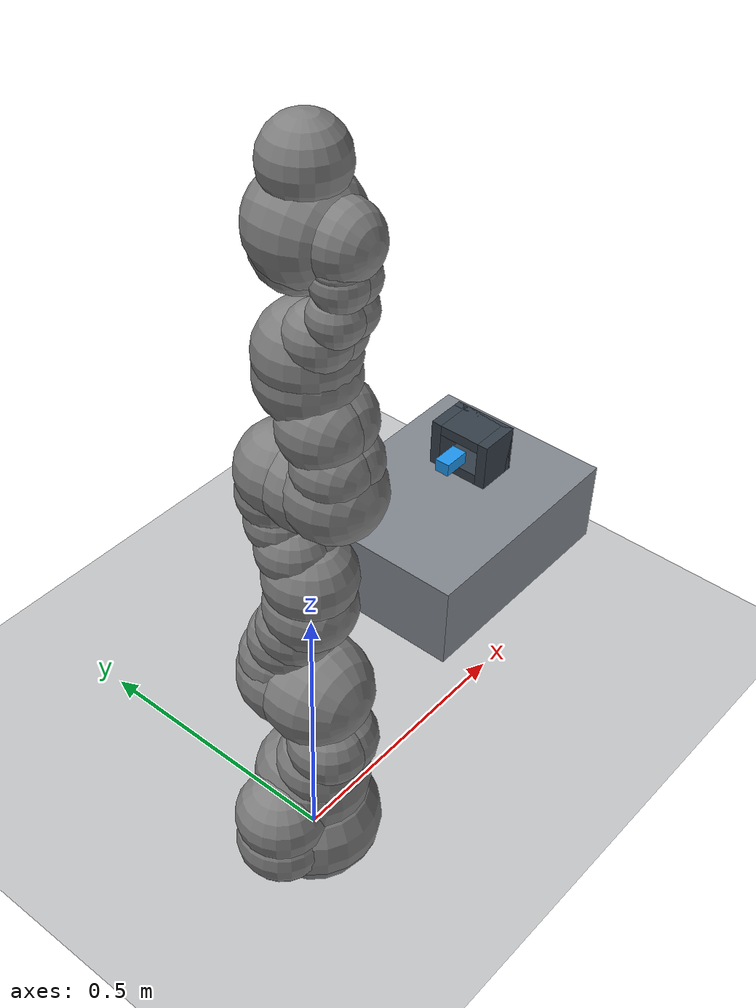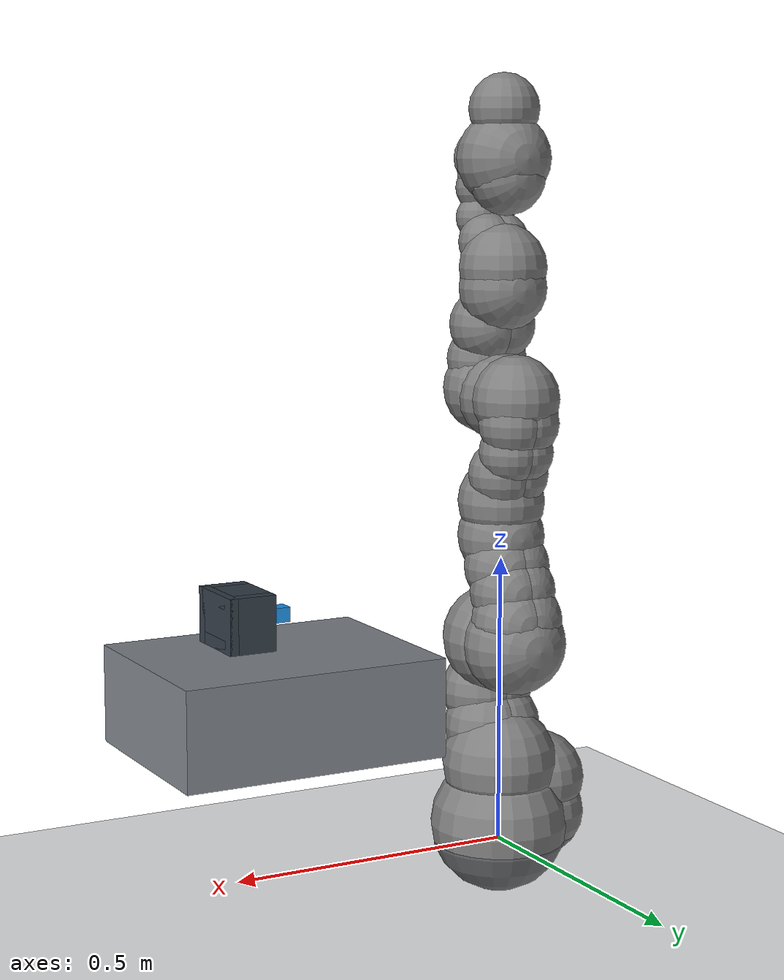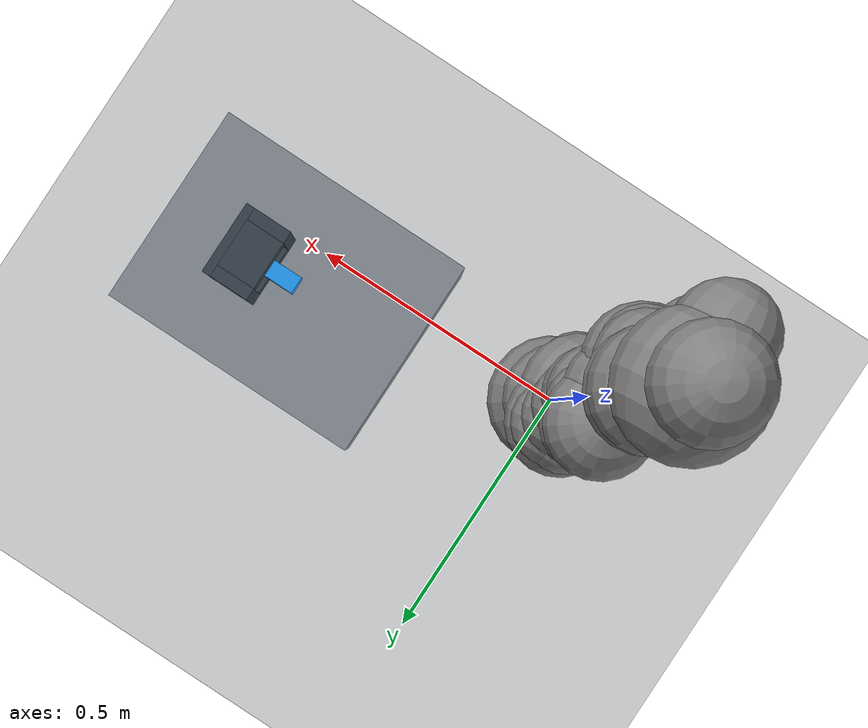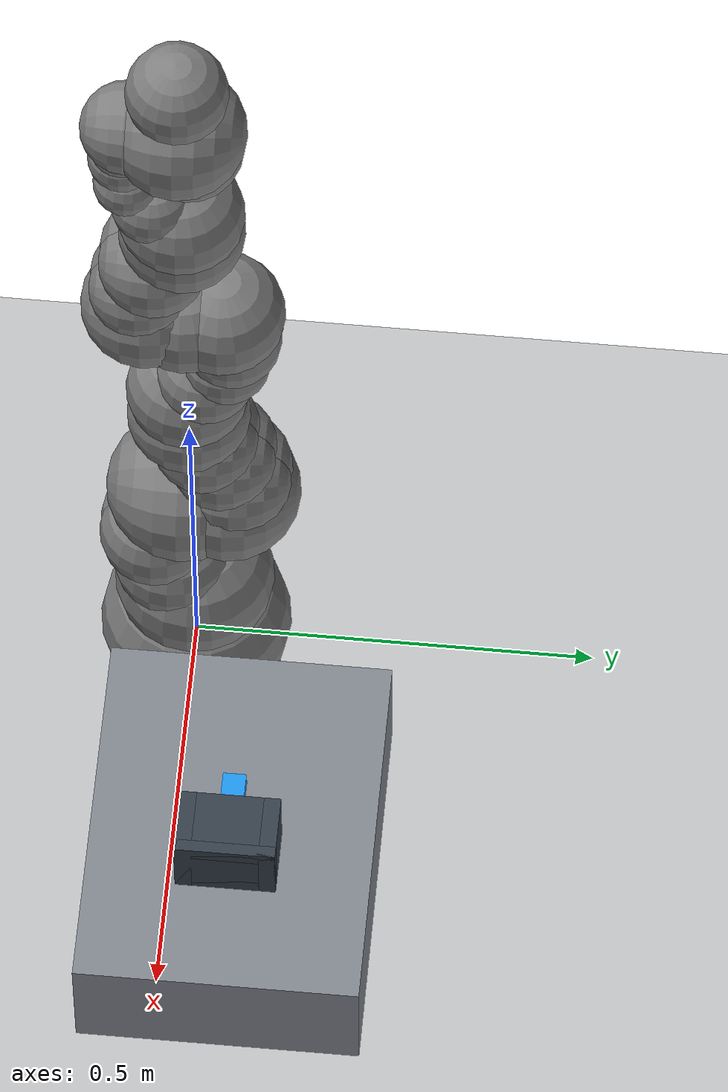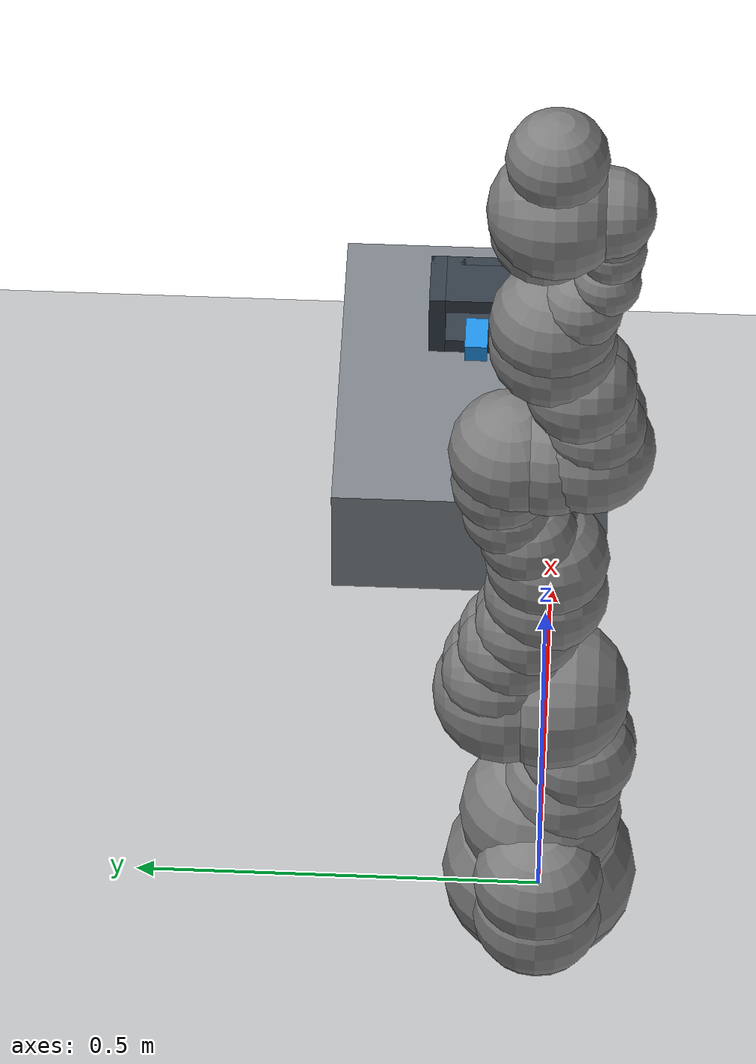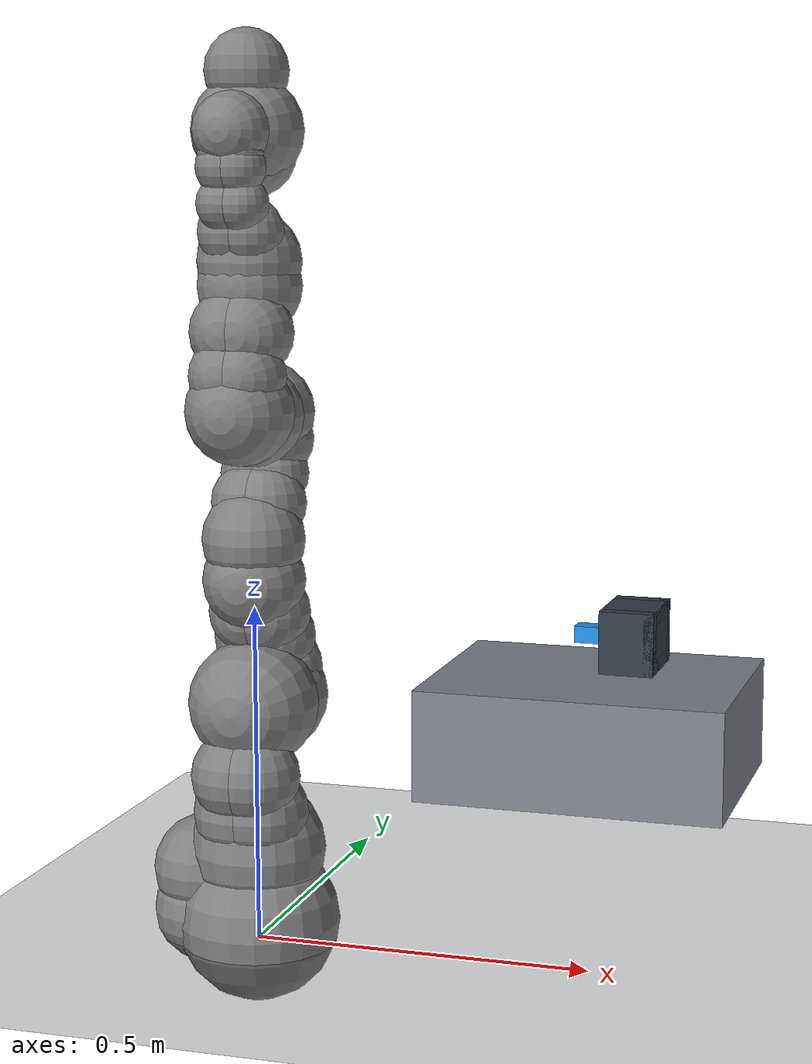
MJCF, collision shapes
<mujoco model="kuka_iiwa_14_door_unlock">
  <include file="iiwa14.xml" />
  <visual>
    <global offwidth="800" offheight="600" />
    <headlight diffuse="0.75 0.75 0.75" ambient="0.35 0.35 0.35" specular="0 0 0" />
  </visual>
  <worldbody>
    <light pos="0.35 -0.2 1.45" dir="0.2 0.1 -1" directional="true" />
    <geom name="floor" type="plane" size="0 0 0.05" rgba="0.24 0.26 0.29 1" />
    <geom name="work_surface" type="box" pos="0.48 0.10 0.33" size="0.22 0.17 0.08" mass="0" contype="1" conaffinity="3" friction="1 0.1 0.01" rgba="0.50 0.52 0.55 1" />
    <body name="door_unlock_housing" pos="0.54 0.10 0.47">
      <geom name="door_unlock_housing_geom" type="box" pos="0.032 0 0" size="0.007 0.06 0.045" mass="0" contype="1" conaffinity="3" rgba="0.20 0.24 0.28 1" />
      <geom name="door_unlock_housing_front" type="box" pos="0 -0.05 0" size="0.039 0.01 0.045" mass="0" contype="1" conaffinity="3" rgba="0.20 0.24 0.28 1" />
      <geom name="door_unlock_housing_back" type="box" pos="0 0.05 0" size="0.039 0.01 0.045" mass="0" contype="1" conaffinity="3" rgba="0.20 0.24 0.28 1" />
      <geom name="door_unlock_housing_top" type="box" pos="0 0 0.035" size="0.039 0.04 0.01" mass="0" contype="1" conaffinity="3" rgba="0.20 0.24 0.28 1" />
      <geom name="door_unlock_housing_bottom" type="box" pos="0 0 -0.035" size="0.039 0.04 0.01" mass="0" contype="1" conaffinity="3" rgba="0.20 0.24 0.28 1" />
    </body>
    <body name="door_unlock" pos="0.48 0.10 0.47" gravcomp="1">
      <joint name="door_unlock_slide" type="slide" axis="1 0 0" range="0 0.05" damping="0.25" frictionloss="0.02" />
      <geom name="door_unlock_control" type="box" size="0.025 0.014 0.012" mass="0.02" conaffinity="2" friction="0.8 0.08 0.008" rgba="0.12 0.58 0.92 1" />
      <site name="door_unlock_site" size="0.004" rgba="1 1 1 0" />
    </body>
    <body name="evidence_target" pos="0.51 0.10 0.47" />
    <camera name="evidence" mode="targetbody" target="evidence_target" pos="0.84 -0.52 0.71" fovy="40" />
  </worldbody>
</mujoco>

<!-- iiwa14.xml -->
<mujoco model="iiwa14">
  <compiler angle="radian" meshdir="assets" autolimits="true"/>

  <option integrator="implicitfast"/>

  <default>
    <default class="iiwa">
      <material specular="0.5" shininess="0.25"/>
      <joint axis="0 0 1"/>
      <general gaintype="fixed" biastype="affine" gainprm="2000" biasprm="0 -2000 -200"/>
      <default class="joint1">
        <joint range="-2.96706 2.96706"/>
        <general ctrlrange="-2.96706 2.96706"/>
        <default class="joint2">
          <joint range="-2.0944 2.0944"/>
          <general ctrlrange="-2.0944 2.0944"/>
        </default>
      </default>
      <default class="joint3">
        <joint range="-3.05433 3.05433"/>
        <general ctrlrange="-3.05433 3.05433"/>
      </default>
      <default class="visual">
        <geom type="mesh" contype="0" conaffinity="0" group="2" material="gray"/>
      </default>
      <default class="collision">
        <geom group="3"/>
      </default>
      <site size="0.001" rgba="1 0 0 1" group="4"/>
    </default>
  </default>

  <asset>
    <material class="iiwa" name="gray" rgba="0.4 0.4 0.4 1"/>
    <material class="iiwa" name="light_gray" rgba="0.6 0.6 0.6 1"/>
    <material class="iiwa" name="black" rgba="0 0 0 1"/>
    <material class="iiwa" name="orange" rgba="1 0.423529 0.0392157 1"/>

    <mesh file="link_0.obj"/>
    <mesh file="link_1.obj"/>
    <mesh file="link_2_orange.obj"/>
    <mesh file="link_2_grey.obj"/>
    <mesh file="link_3.obj"/>
    <mesh file="band.obj"/>
    <mesh file="kuka.obj"/>
    <mesh file="link_4_orange.obj"/>
    <mesh file="link_4_grey.obj"/>
    <mesh file="link_5.obj"/>
    <mesh file="link_6_orange.obj"/>
    <mesh file="link_6_grey.obj"/>
    <mesh file="link_7.obj"/>
  </asset>

  <worldbody>
    <light name="top" pos="0 0 2" mode="trackcom"/>
    <body name="base" childclass="iiwa">
      <inertial mass="5" pos="-0.1 0 0.07" diaginertia="0.05 0.06 0.03"/>
      <geom class="visual" mesh="link_0"/>
      <geom class="collision" size="0.12" pos="0 0 0.03"/>
      <geom class="collision" size="0.08" pos="-0.08 0 0.103"/>
      <geom class="collision" size="0.08" pos="-0.08 0 0.04"/>
      <geom class="collision" size="0.1" pos="0 0 0.14"/>
      <body name="link1" pos="0 0 0.1575">
        <inertial mass="5.76" pos="0 -0.03 0.12" diaginertia="0.0333 0.033 0.0123"/>
        <joint name="joint1" class="joint1"/>
        <geom class="visual" mesh="link_1"/>
        <geom class="collision" size="0.08" pos="0 0 -0.0005"/>
        <geom class="collision" size="0.075" pos="0.01 -0.025 0.0425"/>
        <geom class="collision" size="0.075" pos="-0.01 -0.025 0.0425"/>
        <geom class="collision" size="0.07" pos="0.01 -0.045 0.1025"/>
        <geom class="collision" size="0.07" pos="-0.01 -0.045 0.1025"/>
        <body name="link2" pos="0 0 0.2025" quat="0 0 1 1">
          <inertial mass="6.35" pos="0.0003 0.059 0.042" diaginertia="0.0305 0.0304 0.011" quat="0 0 1 1"/>
          <joint name="joint2" class="joint2"/>
          <geom class="visual" material="orange" mesh="link_2_orange"/>
          <geom class="visual" mesh="link_2_grey"/>
          <geom class="collision" size="0.095" pos="0 0 -0.01"/>
          <geom class="collision" size="0.09" pos="0 0 0.045"/>
          <geom class="collision" size="0.07" pos="-0.01 0.04 0.054"/>
          <geom class="collision" size="0.065" pos="-0.01 0.09 0.04"/>
          <geom class="collision" size="0.065" pos="-0.01 0.13 0.02"/>
          <geom class="collision" size="0.07" pos="0.01 0.04 0.054"/>
          <geom class="collision" size="0.065" pos="0.01 0.09 0.04"/>
          <geom class="collision" size="0.065" pos="0.01 0.13 0.02"/>
          <geom class="collision" size="0.075" pos="0 0.18 0"/>
          <body name="link3" pos="0 0.2045 0" quat="0 0 1 1">
            <inertial mass="3.5" pos="0 0.03 0.13" diaginertia="0.025 0.0238 0.0076"/>
            <joint name="joint3" class="joint1"/>
            <geom class="visual" mesh="link_3"/>
            <geom class="visual" material="light_gray" mesh="band"/>
            <geom class="visual" material="black" mesh="kuka"/>
            <geom class="collision" size="0.075" pos="0 0 0.0355"/>
            <geom class="collision" size="0.06" pos="0.01 0.023 0.0855"/>
            <geom class="collision" size="0.055" pos="0.01 0.048 0.1255"/>
            <geom class="collision" size="0.06" pos="0.01 0.056 0.1755"/>
            <geom class="collision" size="0.06" pos="-0.01 0.023 0.0855"/>
            <geom class="collision" size="0.055" pos="-0.01 0.048 0.1255"/>
            <geom class="collision" size="0.06" pos="-0.01 0.056 0.1755"/>
            <geom class="collision" size="0.075" pos="0 0.045 0.2155"/>
            <geom class="collision" size="0.075" pos="0 0 0.2155"/>
            <body name="link4" pos="0 0 0.2155" quat="1 1 0 0">
              <inertial mass="3.5" pos="0 0.067 0.034" diaginertia="0.017 0.0164 0.006" quat="1 1 0 0"/>
              <joint name="joint4" class="joint2"/>
              <geom class="visual" material="orange" mesh="link_4_orange"/>
              <geom class="visual" mesh="link_4_grey"/>
              <geom class="collision" size="0.078" pos="0 0.01 0.046"/>
              <geom class="collision" size="0.06" pos="0.01 0.06 0.052"/>
              <geom class="collision" size="0.065" pos="0.01 0.12 0.034"/>
              <geom class="collision" size="0.06" pos="-0.01 0.06 0.052"/>
              <geom class="collision" size="0.065" pos="-0.01 0.12 0.034"/>
              <geom class="collision" size="0.075" pos="0 0.184 0"/>
              <body name="link5" pos="0 0.1845 0" quat="0 0 1 1">
                <inertial mass="3.5" pos="0.0001 0.021 0.076" diaginertia="0.01 0.0087 0.00449"/>
                <joint name="joint5" class="joint1"/>
                <geom class="visual" mesh="link_5"/>
                <geom class="visual" material="light_gray" mesh="band"/>
                <geom class="visual" material="black" mesh="kuka"/>
                <geom class="collision" size="0.075" pos="0 0 0.0335"/>
                <geom class="collision" size="0.05" pos="-0.012 0.031 0.0755"/>
                <geom class="collision" size="0.05" pos="0.012 0.031 0.0755"/>
                <geom class="collision" size="0.04" pos="-0.012 0.06 0.1155"/>
                <geom class="collision" size="0.04" pos="0.012 0.06 0.1155"/>
                <geom class="collision" size="0.04" pos="-0.01 0.065 0.1655"/>
                <geom class="collision" size="0.04" pos="0.01 0.065 0.1655"/>
                <geom class="collision" size="0.035" pos="-0.012 0.065 0.1855"/>
                <geom class="collision" size="0.035" pos="0.012 0.065 0.1855"/>
                <body name="link6" pos="0 0 0.2155" quat="1 1 0 0">
                  <inertial mass="1.8" pos="0 0.0006 0.0004" diaginertia="0.0049 0.0047 0.0036" quat="1 1 0 0"/>
                  <joint name="joint6" class="joint2"/>
                  <geom class="visual" material="orange" mesh="link_6_orange"/>
                  <geom class="visual" mesh="link_6_grey"/>
                  <geom class="collision" size="0.055" pos="0 0 -0.059"/>
                  <geom class="collision" size="0.065" pos="0 -0.03 0.011"/>
                  <geom class="collision" size="0.08"/>
                  <body name="link7" pos="0 0.081 0" quat="0 0 1 1">
                    <inertial mass="1.2" pos="0 0 0.02" diaginertia="0.001 0.001 0.001"/>
                    <joint name="joint7" class="joint3"/>
                    <geom class="visual" mesh="link_7"/>
                    <geom name="link7_contact_geom" class="collision" size="0.06" pos="0 0 0.001"/>
                    <site pos="0 0 0.045" name="attachment_site"/>
                  </body>
                </body>
              </body>
            </body>
          </body>
        </body>
      </body>
    </body>
  </worldbody>

  <contact>
    <exclude body1="base" body2="link1"/>
    <exclude body1="base" body2="link2"/>
    <exclude body1="base" body2="link3"/>
    <exclude body1="link1" body2="link3"/>
    <exclude body1="link3" body2="link5"/>
    <exclude body1="link4" body2="link7"/>
    <exclude body1="link5" body2="link7"/>
  </contact>

  <actuator>
    <general name="actuator1" joint="joint1" class="joint1"/>
    <general name="actuator2" joint="joint2" class="joint2"/>
    <general name="actuator3" joint="joint3" class="joint1"/>
    <general name="actuator4" joint="joint4" class="joint2"/>
    <general name="actuator5" joint="joint5" class="joint1"/>
    <general name="actuator6" joint="joint6" class="joint2"/>
    <general name="actuator7" joint="joint7" class="joint3"/>
  </actuator>

  <keyframe>
    <key name="home" qpos="0 0.785398 0 -1.5708 0 0 0" ctrl="0 0.785398 0 -1.5708 0 0 0"/>
  </keyframe>
</mujoco>
